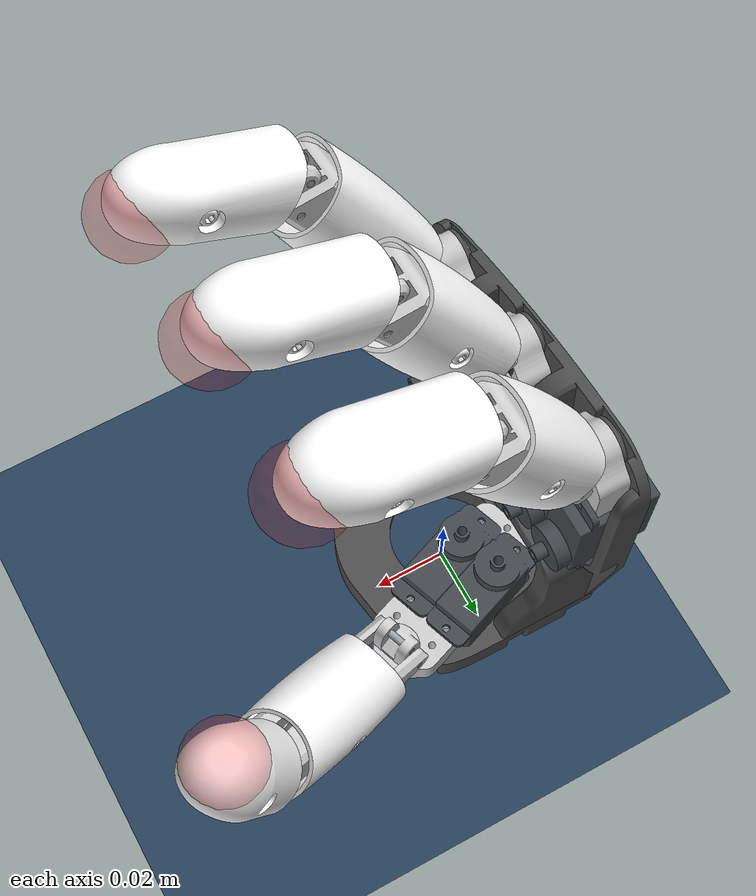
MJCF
<?xml version='1.0' encoding='utf-8'?>
<mujoco model="AH_right_serial_scene">
  <include file="serial_hand.xml" />
  <visual>
    <headlight diffuse="0.6 0.6 0.6" ambient="0.3 0.3 0.3" specular="0 0 0" />
    <rgba haze="0.15 0.25 0.35 1" />
    <global azimuth="160" elevation="-20" />
  </visual>
  <asset>
    <texture type="skybox" builtin="gradient" rgb1="0.3 0.5 0.7" rgb2="0 0 0" width="512" height="3072" />
    <texture type="2d" name="groundplane" builtin="checker" mark="edge" rgb1="0.2 0.3 0.4" rgb2="0.1 0.2 0.3" markrgb="0.8 0.8 0.8" width="300" height="300" />
    <material name="groundplane" texture="groundplane" texuniform="true" texrepeat="5 5" reflectance="0.2" />
  </asset>
  <worldbody>
    <light pos="0 0 3.5" dir="0 0 -1" directional="true" />
    <geom name="floor" size="0 0 0.05" pos="0 0 0" type="plane" material="groundplane" />
    <body name="finger1_target" pos="0.04838594 0.02402413 0.15888899" quat="0.84454864 -0.00166928  0.5354752  -0.001058" mocap="true">
      <geom type="sphere" size=".01" contype="0" conaffinity="0" rgba="1 0. 0. .2" />
    </body>
    <body name="finger2_target" pos="0.04838594 -0.01469891  0.15248302" quat="0.84347869 0.04253325 0.53479657 0.02696767" mocap="true">
      <geom type="sphere" size=".01" contype="0" conaffinity="0" rgba="1 0. 0. .2" />
    </body>
    <body name="finger3_target" pos="0.04838595 -0.05419646  0.14015328" quat="0.83889051 0.09760792 0.53188857 0.06188659" mocap="true">
      <geom type="sphere" size=".01" contype="0" conaffinity="0" rgba="1 0. 0. .2" />
    </body>
    <body name="finger4_target" pos="0.08118535 0.04433619 0.08958578" quat="0.96133341 -0.03752578  0.21530506  0.16755184" mocap="true">
      <geom type="sphere" size=".01" contype="0" conaffinity="0" rgba="1 0. 0. .2" />
    </body>
  </worldbody>
</mujoco>

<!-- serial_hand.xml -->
<mujoco model="AH_right_serial">
  <!-- Generated by ah_serial.build_mjcf from the official AmazingHand MJCF: serial simplification palm -> abd -> mcp -> pip per finger, pip coupled to mcp -->
  <compiler angle="radian" meshdir="../../../AmazingHand/Demo/AHSimulation/AHSimulation/AH_Right/mjcf/assets" autolimits="true" />
  <default>
    <default class="mjcf">
      <joint frictionloss="0.1" armature="0.005" />
      <position kp="50" dampratio="1" />
      <default class="visual">
        <geom type="mesh" contype="0" conaffinity="0" group="2" />
      </default>
      <default class="collision">
        <geom group="3" />
      </default>
    </default>
    <default class="serial_joint">
      <joint type="hinge" damping="0.02" frictionloss="0.0" armature="0.0005" />
    </default>
    <equality solref="0.002 1" solimp="0.99 0.999 0.0005 0.5 2" />
  </default>
  <asset>
    <mesh name="proximal_shell" file="proximal_shell.stl" />
    <mesh name="parallel_pin_2_x_16__da4b7ddbe9d803fe3fbc70f2e822b99b" file="parallel_pin_2_x_16__da4b7ddbe9d803fe3fbc70f2e822b99b.stl" />
    <mesh name="bushing_0608_04" file="bushing_0608_04.stl" />
    <mesh name="finger_frame_2" file="finger_frame_2.stl" />
    <mesh name="parallel_pin_2_x_10__fee063fca0c8b40e46bbc4ffff61d999" file="parallel_pin_2_x_10__fee063fca0c8b40e46bbc4ffff61d999.stl" />
    <mesh name="distal" file="distal.stl" />
    <mesh name="finger_frame_1" file="finger_frame_1.stl" />
    <mesh name="std00447_thermoplastique_m2_5x6__configuration_default" file="std00447_thermoplastique_m2_5x6__configuration_default.stl" />
    <mesh name="scs0009" file="scs0009.stl" />
    <mesh name="proximal" file="proximal.stl" />
    <mesh name="plain_washer_large_grade_a_m2_5__9a369f0dc77bf9c598cdf3fb468977e5" file="plain_washer_large_grade_a_m2_5__9a369f0dc77bf9c598cdf3fb468977e5.stl" />
    <mesh name="r_hand_plate" file="r_hand_plate.stl" />
    <mesh name="std00333_plast_tcb_torx_2_5x8__configuration_copy_of_default" file="std00333_plast_tcb_torx_2_5x8__configuration_copy_of_default.stl" />
    <mesh name="gimbal" file="gimbal.stl" />
    <mesh name="distal_shell" file="distal_shell.stl" />
    <mesh name="r_wrist_interface" file="r_wrist_interface.stl" />
    <material name="scs0009_material" rgba="0.262745 0.282353 0.301961 1" />
    <material name="finger_frame_1_material" rgba="0.8 0.8 0.8 1" />
    <material name="r_hand_plate_material" rgba="0.301961 0.301961 0.301961 1" />
    <material name="finger_frame_2_material" rgba="0.8 0.8 0.8 1" />
    <material name="bushing_0608_04_material" rgba="0.301961 0.301961 0.301961 1" />
    <material name="r_wrist_interface_material" rgba="0.301961 0.301961 0.301961 1" />
    <material name="std00333_plast_tcb_torx_2_5x8__configuration_copy_of_default_material" rgba="0.901961 0.901961 0.901961 1" />
    <material name="gimbal_material" rgba="0.8 0.8 0.8 1" />
    <material name="plain_washer_large_grade_a_m2_5__9a369f0dc77bf9c598cdf3fb468977e5_material" rgba="0.603922 0.647059 0.686275 1" />
    <material name="parallel_pin_2_x_10__fee063fca0c8b40e46bbc4ffff61d999_material" rgba="0.603922 0.647059 0.686275 1" />
    <material name="std00447_thermoplastique_m2_5x6__configuration_default_material" rgba="0.901961 0.901961 0.901961 1" />
    <material name="distal_material" rgba="0.8 0.8 0.8 1" />
    <material name="distal_shell_material" rgba="1 1 1 1" />
    <material name="parallel_pin_2_x_16__da4b7ddbe9d803fe3fbc70f2e822b99b_material" rgba="0.603922 0.647059 0.686275 1" />
    <material name="proximal_shell_material" rgba="1 1 1 1" />
    <material name="proximal_material" rgba="0.8 0.8 0.8 1" />
  </asset>
  <worldbody>
    <body name="r_wrist_interface" pos="0 0 0" quat="1 0 0 0" childclass="mjcf">
      <inertial pos="0 0 0" mass="1e-09" fullinertia="1e-09 1e-09 1e-09 0 0 0" />
      <geom type="mesh" class="visual" pos="-0.022075 0.03055 0.0698" quat="0.707107 1.17211e-16 -4.71845e-16 0.707107" mesh="scs0009" material="scs0009_material" />
      <geom type="mesh" class="visual" pos="-0.0115 0.0245 0.1022" quat="0.5 0.5 -0.5 -0.5" mesh="finger_frame_1" material="finger_frame_1_material" />
      <geom type="mesh" class="visual" pos="-0.0115 0.0245 0.1022" quat="0.5 0.5 -0.5 -0.5" mesh="r_hand_plate" material="r_hand_plate_material" />
      <geom type="mesh" class="visual" pos="-0.00443741 0.0191037 0.019125" quat="0.579228 -0.579228 0.40558 -0.40558" mesh="scs0009" material="scs0009_material" />
      <geom type="mesh" class="visual" pos="-0.0115 -0.0083 0.0961543" quat="0.473147 0.525483 -0.473147 -0.525483" mesh="finger_frame_2" material="finger_frame_2_material" />
      <geom type="mesh" class="visual" pos="-0.0115 -0.0405 0.0851417" quat="0.437766 0.555303 -0.437766 -0.555303" mesh="finger_frame_2" material="finger_frame_2_material" />
      <geom type="mesh" class="visual" pos="-0.015 -0.0083 0.0961543" quat="0.525483 -0.473147 0.525483 -0.473147" mesh="bushing_0608_04" material="bushing_0608_04_material" />
      <geom type="mesh" class="visual" pos="-0.015 0.0245 0.1022" quat="0.5 -0.5 0.5 -0.5" mesh="bushing_0608_04" material="bushing_0608_04_material" />
      <geom type="mesh" class="visual" pos="-0.015 -0.0405 0.0851417" quat="0.555303 -0.437766 0.555303 -0.437766" mesh="bushing_0608_04" material="bushing_0608_04_material" />
      <geom type="mesh" class="visual" pos="-0.025 -0.0083 0.0961543" quat="0.473147 0.525483 -0.473147 -0.525483" mesh="bushing_0608_04" material="bushing_0608_04_material" />
      <geom type="mesh" class="visual" pos="0.0280778 0.0245 0.0297" quat="3.51037e-16 0.573576 0.819152 7.48307e-16" mesh="finger_frame_2" material="finger_frame_2_material" />
      <geom type="mesh" class="visual" pos="-0.022075 -0.0109301 0.0632994" quat="0.706138 0.0370071 -0.0370071 0.706138" mesh="scs0009" material="scs0009_material" />
      <geom type="mesh" class="visual" pos="-0.022075 0.01845 0.0698" quat="0.707107 9.10276e-17 -3.92048e-16 0.707107" mesh="scs0009" material="scs0009_material" />
      <geom type="mesh" class="visual" pos="-0.0109 0.0245 0.1022" quat="0.5 0.5 -0.5 -0.5" mesh="finger_frame_2" material="finger_frame_2_material" />
      <geom type="mesh" class="visual" pos="-0.022075 0.00110358 0.0645642" quat="0.706138 0.0370071 -0.0370071 0.706138" mesh="scs0009" material="scs0009_material" />
      <geom type="mesh" class="visual" pos="-0.022075 -0.0388192 0.0522246" quat="0.702205 0.0831115 -0.0831115 0.702205" mesh="scs0009" material="scs0009_material" />
      <geom type="mesh" class="visual" pos="-0.0115 -0.0083 0.0961543" quat="0.473147 0.525483 -0.473147 -0.525483" mesh="finger_frame_1" material="finger_frame_1_material" />
      <geom type="mesh" class="visual" pos="0.0280778 0.0245 0.0262" quat="0.573576 -4.6886e-16 -6.93889e-16 0.819152" mesh="bushing_0608_04" material="bushing_0608_04_material" />
      <geom type="mesh" class="visual" pos="-0.022075 -0.0270535 0.0550493" quat="0.702205 0.0831115 -0.0831115 0.702205" mesh="scs0009" material="scs0009_material" />
      <geom type="mesh" class="visual" pos="-0.0115 0.0245 0.1022" quat="0.5 0.5 -0.5 -0.5" mesh="r_wrist_interface" material="r_wrist_interface_material" />
      <geom type="mesh" class="visual" pos="-0.000298971 0.00773341 0.019125" quat="0.579228 -0.579228 0.40558 -0.40558" mesh="scs0009" material="scs0009_material" />
      <geom type="mesh" class="visual" pos="-0.025 0.0245 0.1022" quat="0.5 0.5 -0.5 -0.5" mesh="bushing_0608_04" material="bushing_0608_04_material" />
      <geom type="mesh" class="visual" pos="-0.025 -0.0405 0.0851417" quat="0.437766 0.555303 -0.437766 -0.555303" mesh="bushing_0608_04" material="bushing_0608_04_material" />
      <geom type="mesh" class="visual" pos="0.0280778 0.0245 0.0162" quat="3.37101e-16 0.573576 0.819152 4.75257e-16" mesh="bushing_0608_04" material="bushing_0608_04_material" />
      <geom type="mesh" class="visual" pos="-0.0115 -0.0405 0.0851417" quat="0.437766 0.555303 -0.437766 -0.555303" mesh="finger_frame_1" material="finger_frame_1_material" />
      <geom type="mesh" class="visual" pos="0.0280778 0.0245 0.0297" quat="5.83086e-16 0.573576 0.819152 6.68824e-16" mesh="finger_frame_1" material="finger_frame_1_material" />
      <body name="f1_gimbal" pos="-0.00549924 0.0222505 0.102209" quat="0.615555 -0.617987 -0.3465 -0.345141">
        <joint name="f1_abd" class="serial_joint" pos="-0.00495568 -0.00810501 0.00225" axis="-0.521651 -0.853159 0" range="-0.692653 0.682224" />
        <inertial pos="-0.00530874 -0.00868244 0.00225" mass="0.00201325" fullinertia="9.34482e-08 4.69015e-08 1.16807e-07 -4.54529e-08 -5.37151e-21 1.88891e-21" />
        <geom type="mesh" class="visual" pos="-0.0113198 -0.0185136 0.00225" quat="0.616776 -0.345814 0.616776 0.345814" mesh="std00333_plast_tcb_torx_2_5x8__configuration_copy_of_default" material="std00333_plast_tcb_torx_2_5x8__configuration_copy_of_default_material" />
        <geom type="mesh" class="visual" pos="-0.0031299 -0.00511895 0.00225" quat="0.345814 0.616776 0.345814 -0.616776" mesh="gimbal" material="gimbal_material" />
        <geom type="mesh" class="visual" pos="-0.0103287 -0.0168926 0.00225" quat="0.345814 0.616776 0.345814 -0.616776" mesh="plain_washer_large_grade_a_m2_5__9a369f0dc77bf9c598cdf3fb468977e5" material="plain_washer_large_grade_a_m2_5__9a369f0dc77bf9c598cdf3fb468977e5_material" />
        <geom type="mesh" class="visual" pos="8.32667e-17 -4.85723e-17 0.00225" quat="0.872253 2.80913e-14 1.12133e-14 0.489055" mesh="parallel_pin_2_x_10__fee063fca0c8b40e46bbc4ffff61d999" material="parallel_pin_2_x_10__fee063fca0c8b40e46bbc4ffff61d999_material" />
        <body name="f1_proximal" pos="0.0488697 -0.00532345 -0.00274996" quat="0.999998 1.93059e-14 2.35411e-14 -0.00196581">
          <joint name="f1_mcp" class="serial_joint" pos="-0.052 1.38778e-17 0" axis="0 1.38778e-16 1" range="-1.09281 0.789243" />
          <inertial pos="-0.0249171 -0.00392936 0.0052354" mass="0.0101851" fullinertia="4.96149e-07 2.52849e-06 2.3577e-06 2.45138e-08 1.19032e-10 3.03943e-10" />
          <geom type="mesh" class="visual" pos="-0.022 -0.004 -0.00655" quat="0.707107 6.63882e-17 -1.66533e-16 -0.707107" mesh="std00447_thermoplastique_m2_5x6__configuration_default" material="std00447_thermoplastique_m2_5x6__configuration_default_material" />
          <geom type="mesh" class="visual" pos="-0.022 -0.004 0.01685" quat="2.62977e-17 -0.707107 0.707107 -1.94944e-16" mesh="std00447_thermoplastique_m2_5x6__configuration_default" material="std00447_thermoplastique_m2_5x6__configuration_default_material" />
          <geom type="mesh" class="visual" pos="-0.052 0 0.00515" quat="0.707107 -5.62433e-17 5.55112e-17 -0.707107" mesh="parallel_pin_2_x_16__da4b7ddbe9d803fe3fbc70f2e822b99b" material="parallel_pin_2_x_16__da4b7ddbe9d803fe3fbc70f2e822b99b_material" />
          <geom type="mesh" class="visual" pos="-5.55112e-17 -4.16334e-17 0.00515" quat="0.707107 -1.11937e-17 -1.66533e-16 -0.707107" mesh="parallel_pin_2_x_16__da4b7ddbe9d803fe3fbc70f2e822b99b" material="parallel_pin_2_x_16__da4b7ddbe9d803fe3fbc70f2e822b99b_material" />
          <geom type="mesh" class="visual" pos="-0.052 -1.38778e-17 0.00515" quat="0.5 0.5 0.5 -0.5" mesh="proximal_shell" material="proximal_shell_material" />
          <geom type="mesh" class="visual" pos="-0.052 1.38778e-17 0.00525" quat="0.5 0.5 0.5 -0.5" mesh="proximal" material="proximal_material" />
          <body name="f1_distal" pos="0.00037029 -0.00598856 0.00655" quat="1.9203e-14 0.999998 0.00199723 2.35655e-14">
            <joint name="f1_pip" class="serial_joint" pos="-0.000346366 -0.00598999 0.00655" axis="4.69867e-14 3.85581e-14 -1" range="-1.16284 0.708367" />
            <inertial pos="0.014571 -0.0133924 0.00225" mass="0.00540375" fullinertia="3.60212e-07 5.51031e-07 7.69492e-07 3.36413e-07 4.59414e-20 6.20919e-20" />
            <geom type="mesh" class="visual" pos="0.0194851 -0.0165558 -0.00735" quat="0.870159 6.45235e-15 -4.26603e-14 0.49277" mesh="std00447_thermoplastique_m2_5x6__configuration_default" material="std00447_thermoplastique_m2_5x6__configuration_default_material" />
            <geom type="mesh" class="visual" pos="0.0194851 -0.0165558 0.01185" quat="5.40609e-15 -0.870159 -0.49277 -2.95972e-14" mesh="std00447_thermoplastique_m2_5x6__configuration_default" material="std00447_thermoplastique_m2_5x6__configuration_default_material" />
            <geom type="mesh" class="visual" pos="-0.0449404 0.0207565 0.00225" quat="0.348441 -0.615296 -0.348441 -0.615296" mesh="distal" material="distal_material" />
            <geom type="mesh" class="visual" pos="-0.0449404 0.0207565 0.00225" quat="0.348441 -0.615296 -0.348441 -0.615296" mesh="distal_shell" material="distal_shell_material" />
            <geom type="mesh" class="visual" pos="5.55112e-17 6.93889e-17 0.00225" quat="3.44594e-14 -0.49277 0.870159 4.55847e-15" mesh="parallel_pin_2_x_10__fee063fca0c8b40e46bbc4ffff61d999" material="parallel_pin_2_x_10__fee063fca0c8b40e46bbc4ffff61d999_material" />
            <site name="tip1" group="3" pos="0.0272563 -0.0277177 0.00225" quat="0.335723 -0.335723 0.622326 -0.622326" />
          </body>
        </body>
      </body>
      <body name="f2_gimbal" pos="-0.00550011 -0.0105371 0.0959289" quat="0.647038 -0.584949 -0.327969 -0.362784">
        <joint name="f2_abd" class="serial_joint" pos="-0.00495568 -0.00810501 0.00225" axis="-0.521651 -0.853159 0" range="-0.690372 0.680595" />
        <inertial pos="-0.00530874 -0.00868244 0.00225" mass="0.00201325" fullinertia="9.34482e-08 4.69015e-08 1.16807e-07 -4.54529e-08 4.13712e-22 -1.1292e-21" />
        <geom type="mesh" class="visual" pos="1.52656e-16 -9.71445e-17 0.00225" quat="0.872253 -3.49423e-15 -4.21885e-15 0.489055" mesh="parallel_pin_2_x_10__fee063fca0c8b40e46bbc4ffff61d999" material="parallel_pin_2_x_10__fee063fca0c8b40e46bbc4ffff61d999_material" />
        <geom type="mesh" class="visual" pos="-0.0113198 -0.0185136 0.00225" quat="0.616776 -0.345814 0.616776 0.345814" mesh="std00333_plast_tcb_torx_2_5x8__configuration_copy_of_default" material="std00333_plast_tcb_torx_2_5x8__configuration_copy_of_default_material" />
        <geom type="mesh" class="visual" pos="-0.0103287 -0.0168926 0.00225" quat="0.345814 0.616776 0.345814 -0.616776" mesh="plain_washer_large_grade_a_m2_5__9a369f0dc77bf9c598cdf3fb468977e5" material="plain_washer_large_grade_a_m2_5__9a369f0dc77bf9c598cdf3fb468977e5_material" />
        <geom type="mesh" class="visual" pos="-0.0031299 -0.00511895 0.00225" quat="0.345814 0.616776 0.345814 -0.616776" mesh="gimbal" material="gimbal_material" />
        <body name="f2_proximal" pos="0.0488697 -0.00532339 -0.00275" quat="0.999998 -1.16013e-15 -5.38147e-15 -0.00196532">
          <joint name="f2_mcp" class="serial_joint" pos="-0.052 2.08167e-17 -2.60209e-18" axis="0 6.9389e-17 1" range="-1.09282 0.789245" />
          <inertial pos="-0.0249171 -0.00392936 0.0052354" mass="0.0101851" fullinertia="4.96149e-07 2.52849e-06 2.3577e-06 2.45138e-08 1.19032e-10 3.03943e-10" />
          <geom type="mesh" class="visual" pos="0 1.38778e-17 0.00515" quat="0.707107 -3.56612e-17 1.11022e-16 -0.707107" mesh="parallel_pin_2_x_16__da4b7ddbe9d803fe3fbc70f2e822b99b" material="parallel_pin_2_x_16__da4b7ddbe9d803fe3fbc70f2e822b99b_material" />
          <geom type="mesh" class="visual" pos="-0.022 -0.004 0.01685" quat="6.10867e-17 0.707107 -0.707107 -1.01873e-16" mesh="std00447_thermoplastique_m2_5x6__configuration_default" material="std00447_thermoplastique_m2_5x6__configuration_default_material" />
          <geom type="mesh" class="visual" pos="-0.022 -0.004 -0.00655" quat="0.707107 -2.46327e-16 4.44089e-16 -0.707107" mesh="std00447_thermoplastique_m2_5x6__configuration_default" material="std00447_thermoplastique_m2_5x6__configuration_default_material" />
          <geom type="mesh" class="visual" pos="-0.052 2.08167e-17 0.00525" quat="0.5 0.5 0.5 -0.5" mesh="proximal" material="proximal_material" />
          <geom type="mesh" class="visual" pos="-0.052 2.77556e-17 0.00515" quat="0.5 0.5 0.5 -0.5" mesh="proximal_shell" material="proximal_shell_material" />
          <geom type="mesh" class="visual" pos="-0.052 2.77556e-17 0.00515" quat="0.707107 1.76229e-16 -0 -0.707107" mesh="parallel_pin_2_x_16__da4b7ddbe9d803fe3fbc70f2e822b99b" material="parallel_pin_2_x_16__da4b7ddbe9d803fe3fbc70f2e822b99b_material" />
          <body name="f2_distal" pos="0.000370296 -0.00598856 0.00655" quat="1.05676e-15 -0.999998 -0.0019977 5.33497e-15">
            <joint name="f2_pip" class="serial_joint" pos="-0.000346366 -0.00598999 0.00655" axis="-1.08108e-14 -2.17187e-15 -1" range="-1.16285 0.708366" />
            <inertial pos="0.014571 -0.0133924 0.00225" mass="0.00540375" fullinertia="3.60212e-07 5.51031e-07 7.69492e-07 3.36413e-07 -3.94368e-22 -1.61985e-22" />
            <geom type="mesh" class="visual" pos="-0.0449404 0.0207565 0.00225" quat="0.348441 -0.615296 -0.348441 -0.615296" mesh="distal" material="distal_material" />
            <geom type="mesh" class="visual" pos="0.0194851 -0.0165558 0.01185" quat="2.30282e-15 -0.870159 -0.49277 5.04081e-15" mesh="std00447_thermoplastique_m2_5x6__configuration_default" material="std00447_thermoplastique_m2_5x6__configuration_default_material" />
            <geom type="mesh" class="visual" pos="-0.0449404 0.0207565 0.00225" quat="0.348441 -0.615296 -0.348441 -0.615296" mesh="distal_shell" material="distal_shell_material" />
            <geom type="mesh" class="visual" pos="0.0194851 -0.0165558 -0.00735" quat="0.870159 2.64119e-15 5.27356e-15 0.49277" mesh="std00447_thermoplastique_m2_5x6__configuration_default" material="std00447_thermoplastique_m2_5x6__configuration_default_material" />
            <geom type="mesh" class="visual" pos="2.77556e-17 1.38778e-17 0.00225" quat="2.56875e-17 0.49277 -0.870159 -3.08699e-17" mesh="parallel_pin_2_x_10__fee063fca0c8b40e46bbc4ffff61d999" material="parallel_pin_2_x_10__fee063fca0c8b40e46bbc4ffff61d999_material" />
            <site name="tip2" group="3" pos="0.0272563 -0.0277177 0.00225" quat="0.335723 -0.335723 0.622326 -0.622326" />
          </body>
        </body>
      </body>
      <body name="f3_gimbal" pos="-0.0054997 -0.0426897 0.0846249" quat="0.683924 -0.541353 -0.303531 -0.383476">
        <joint name="f3_abd" class="serial_joint" pos="-0.00495568 -0.00810501 0.00225" axis="-0.521651 -0.853159 0" range="-0.692653 0.682225" />
        <inertial pos="-0.00530874 -0.00868244 0.00225" mass="0.00201325" fullinertia="9.34482e-08 4.69015e-08 1.16807e-07 -4.54529e-08 -9.47916e-23 -9.91331e-23" />
        <geom type="mesh" class="visual" pos="-0.0031299 -0.00511895 0.00225" quat="0.345814 0.616776 0.345814 -0.616776" mesh="gimbal" material="gimbal_material" />
        <geom type="mesh" class="visual" pos="-0.0113198 -0.0185136 0.00225" quat="0.616776 -0.345814 0.616776 0.345814" mesh="std00333_plast_tcb_torx_2_5x8__configuration_copy_of_default" material="std00333_plast_tcb_torx_2_5x8__configuration_copy_of_default_material" />
        <geom type="mesh" class="visual" pos="-0.0103287 -0.0168926 0.00225" quat="0.345814 0.616776 0.345814 -0.616776" mesh="plain_washer_large_grade_a_m2_5__9a369f0dc77bf9c598cdf3fb468977e5" material="plain_washer_large_grade_a_m2_5__9a369f0dc77bf9c598cdf3fb468977e5_material" />
        <geom type="mesh" class="visual" pos="-4.02456e-16 2.98372e-16 0.00225" quat="0.872253 1.28716e-15 1.77636e-15 0.489055" mesh="parallel_pin_2_x_10__fee063fca0c8b40e46bbc4ffff61d999" material="parallel_pin_2_x_10__fee063fca0c8b40e46bbc4ffff61d999_material" />
        <body name="f3_proximal" pos="0.0488697 -0.00532398 -0.00275001" quat="0.999998 2.64371e-17 6.16269e-17 -0.0019703">
          <joint name="f3_mcp" class="serial_joint" pos="-0.052 6.93889e-18 -1.73472e-17" axis="0 0 1" range="-1.09282 0.789249" />
          <inertial pos="-0.0249171 -0.00392936 0.0052354" mass="0.0101851" fullinertia="4.96149e-07 2.52849e-06 2.3577e-06 2.45138e-08 1.19032e-10 3.03943e-10" />
          <geom type="mesh" class="visual" pos="-0.052 1.38778e-17 0.00515" quat="0.5 0.5 0.5 -0.5" mesh="proximal_shell" material="proximal_shell_material" />
          <geom type="mesh" class="visual" pos="-0.022 -0.004 -0.00655" quat="0.707107 1.743e-16 1.09635e-15 -0.707107" mesh="std00447_thermoplastique_m2_5x6__configuration_default" material="std00447_thermoplastique_m2_5x6__configuration_default_material" />
          <geom type="mesh" class="visual" pos="-0.052 1.38778e-17 0.00525" quat="0.5 0.5 0.5 -0.5" mesh="proximal" material="proximal_material" />
          <geom type="mesh" class="visual" pos="-0.052 6.93889e-18 0.00515" quat="0.707107 1.94591e-16 9.99201e-16 -0.707107" mesh="parallel_pin_2_x_16__da4b7ddbe9d803fe3fbc70f2e822b99b" material="parallel_pin_2_x_16__da4b7ddbe9d803fe3fbc70f2e822b99b_material" />
          <geom type="mesh" class="visual" pos="-0.022 -0.004 0.01685" quat="6.5388e-16 -0.707107 0.707107 -5.09493e-16" mesh="std00447_thermoplastique_m2_5x6__configuration_default" material="std00447_thermoplastique_m2_5x6__configuration_default_material" />
          <geom type="mesh" class="visual" pos="0 -6.93889e-18 0.00515" quat="0.707107 -1.10646e-15 3.44169e-15 -0.707107" mesh="parallel_pin_2_x_16__da4b7ddbe9d803fe3fbc70f2e822b99b" material="parallel_pin_2_x_16__da4b7ddbe9d803fe3fbc70f2e822b99b_material" />
          <body name="f3_distal" pos="0.000370236 -0.00598856 0.00655" quat="5.21401e-17 0.999998 0.00199269 7.47937e-18">
            <joint name="f3_pip" class="serial_joint" pos="-0.000346366 -0.00598999 0.00655" axis="1.11022e-16 1.11022e-16 -1" range="-1.16285 0.708375" />
            <inertial pos="0.014571 -0.0133924 0.00225" mass="0.00540375" fullinertia="3.60212e-07 5.51031e-07 7.69492e-07 3.36413e-07 5.01568e-22 3.08634e-22" />
            <geom type="mesh" class="visual" pos="0.0194851 -0.0165558 -0.00735" quat="0.870159 -7.41727e-16 -1.27676e-15 0.49277" mesh="std00447_thermoplastique_m2_5x6__configuration_default" material="std00447_thermoplastique_m2_5x6__configuration_default_material" />
            <geom type="mesh" class="visual" pos="0.0194851 -0.0165558 0.01185" quat="2.50462e-16 -0.870159 -0.49277 -1.265e-16" mesh="std00447_thermoplastique_m2_5x6__configuration_default" material="std00447_thermoplastique_m2_5x6__configuration_default_material" />
            <geom type="mesh" class="visual" pos="2.77556e-17 1.38778e-17 0.00225" quat="1.21675e-16 -0.49277 0.870159 2.46257e-16" mesh="parallel_pin_2_x_10__fee063fca0c8b40e46bbc4ffff61d999" material="parallel_pin_2_x_10__fee063fca0c8b40e46bbc4ffff61d999_material" />
            <geom type="mesh" class="visual" pos="-0.0449404 0.0207565 0.00225" quat="0.348441 -0.615296 -0.348441 -0.615296" mesh="distal" material="distal_material" />
            <geom type="mesh" class="visual" pos="-0.0449404 0.0207565 0.00225" quat="0.348441 -0.615296 -0.348441 -0.615296" mesh="distal_shell" material="distal_shell_material" />
            <site name="tip3" group="3" pos="0.0272563 -0.0277177 0.00225" quat="0.335723 -0.335723 0.622326 -0.622326" />
          </body>
        </body>
      </body>
      <body name="f4_gimbal" pos="0.027317 0.0266176 0.0357002" quat="0.637629 0.703445 -0.0719113 0.305651">
        <joint name="f4_abd" class="serial_joint" pos="-0.00495566 -0.00810503 0.00225" axis="-0.521648 -0.853161 0" range="-0.692653 0.682222" />
        <inertial pos="-0.00530871 -0.00868246 0.00225" mass="0.00201325" fullinertia="9.34485e-08 4.69012e-08 1.16807e-07 -4.54527e-08 2.07493e-23 -3.80521e-22" />
        <geom type="mesh" class="visual" pos="-6.93889e-18 5.20417e-18 0.00225" quat="0.872252 -2.35114e-14 -1.31006e-14 0.489056" mesh="parallel_pin_2_x_10__fee063fca0c8b40e46bbc4ffff61d999" material="parallel_pin_2_x_10__fee063fca0c8b40e46bbc4ffff61d999_material" />
        <geom type="mesh" class="visual" pos="-0.0103286 -0.0168926 0.00225" quat="0.345815 0.616776 0.345815 -0.616776" mesh="plain_washer_large_grade_a_m2_5__9a369f0dc77bf9c598cdf3fb468977e5" material="plain_washer_large_grade_a_m2_5__9a369f0dc77bf9c598cdf3fb468977e5_material" />
        <geom type="mesh" class="visual" pos="-0.00312989 -0.00511896 0.00225" quat="0.345815 0.616776 0.345815 -0.616776" mesh="gimbal" material="gimbal_material" />
        <geom type="mesh" class="visual" pos="-0.0113198 -0.0185136 0.00225" quat="0.616776 -0.345815 0.616776 0.345815" mesh="std00333_plast_tcb_torx_2_5x8__configuration_copy_of_default" material="std00333_plast_tcb_torx_2_5x8__configuration_copy_of_default_material" />
        <body name="f4_proximal" pos="0.0488697 -0.00532718 -0.00275002" quat="0.999998 -1.3096e-14 -2.18624e-14 -0.00200186">
          <joint name="f4_mcp" class="serial_joint" pos="-0.052 6.93889e-18 0" axis="0 8.6737e-18 1" range="-1.09276 0.789313" />
          <inertial pos="-0.0249171 -0.00392936 0.0052354" mass="0.0101851" fullinertia="4.96149e-07 2.52849e-06 2.3577e-06 2.45138e-08 1.19032e-10 3.03943e-10" />
          <geom type="mesh" class="visual" pos="-0.022 -0.004 0.01685" quat="4.73912e-15 0.707107 -0.707107 -4.64756e-16" mesh="std00447_thermoplastique_m2_5x6__configuration_default" material="std00447_thermoplastique_m2_5x6__configuration_default_material" />
          <geom type="mesh" class="visual" pos="-0.052 4.33681e-18 0.00515" quat="0.707107 -1.03781e-17 -2.77556e-17 -0.707107" mesh="parallel_pin_2_x_16__da4b7ddbe9d803fe3fbc70f2e822b99b" material="parallel_pin_2_x_16__da4b7ddbe9d803fe3fbc70f2e822b99b_material" />
          <geom type="mesh" class="visual" pos="0 -2.68882e-17 0.00515" quat="0.707107 1.23046e-15 -7.77156e-16 -0.707107" mesh="parallel_pin_2_x_16__da4b7ddbe9d803fe3fbc70f2e822b99b" material="parallel_pin_2_x_16__da4b7ddbe9d803fe3fbc70f2e822b99b_material" />
          <geom type="mesh" class="visual" pos="-0.052 3.1225e-17 0.00515" quat="0.5 0.5 0.5 -0.5" mesh="proximal_shell" material="proximal_shell_material" />
          <geom type="mesh" class="visual" pos="-0.052 8.67362e-18 0.00525" quat="0.5 0.5 0.5 -0.5" mesh="proximal" material="proximal_material" />
          <geom type="mesh" class="visual" pos="-0.022 -0.004 -0.00655" quat="0.707107 -3.79993e-15 5.55112e-16 -0.707107" mesh="std00447_thermoplastique_m2_5x6__configuration_default" material="std00447_thermoplastique_m2_5x6__configuration_default_material" />
          <body name="f4_distal" pos="0.000369824 -0.0059886 0.00655" quat="1.3199e-14 -0.999998 -0.00195963 2.17896e-14">
            <joint name="f4_pip" class="serial_joint" pos="-0.00034635 -0.00599 0.00655" axis="-4.36381e-14 -2.6254e-14 -1" range="-1.16279 0.708435" />
            <inertial pos="0.0145711 -0.0133923 0.00225" mass="0.00540375" fullinertia="3.6021e-07 5.51033e-07 7.69492e-07 3.36412e-07 9.8633e-21 -8.79128e-21" />
            <geom type="mesh" class="visual" pos="-0.0449404 0.0207563 0.00225" quat="0.348442 -0.615295 -0.348442 -0.615295" mesh="distal_shell" material="distal_shell_material" />
            <geom type="mesh" class="visual" pos="0.0194851 -0.0165557 0.01185" quat="1.02396e-15 0.870159 0.492771 -2.69161e-14" mesh="std00447_thermoplastique_m2_5x6__configuration_default" material="std00447_thermoplastique_m2_5x6__configuration_default_material" />
            <geom type="mesh" class="visual" pos="9.71445e-17 6.28837e-17 0.00225" quat="2.69867e-14 0.492771 -0.870159 9.54903e-16" mesh="parallel_pin_2_x_10__fee063fca0c8b40e46bbc4ffff61d999" material="parallel_pin_2_x_10__fee063fca0c8b40e46bbc4ffff61d999_material" />
            <geom type="mesh" class="visual" pos="-0.0449404 0.0207563 0.00225" quat="0.348442 -0.615295 -0.348442 -0.615295" mesh="distal" material="distal_material" />
            <geom type="mesh" class="visual" pos="0.0194851 -0.0165557 -0.00735" quat="0.870159 -8.44457e-16 2.55351e-14 0.492771" mesh="std00447_thermoplastique_m2_5x6__configuration_default" material="std00447_thermoplastique_m2_5x6__configuration_default_material" />
            <site name="tip4" group="3" pos="0.0272563 -0.0277177 0.00225" quat="0.622326 0.622326 0.335724 0.335724" />
          </body>
        </body>
      </body>
    </body>
  </worldbody>
  <equality>
    <joint name="f1_pip_coupling" joint1="f1_pip" joint2="f1_mcp" polycoef="3.3653937e-05 0.99006615 -0.044792106 -0.1037965 -0.091216271" />
    <joint name="f2_pip_coupling" joint1="f2_pip" joint2="f2_mcp" polycoef="3.2227289e-05 0.99008691 -0.044784174 -0.10384059 -0.091244941" />
    <joint name="f3_pip_coupling" joint1="f3_pip" joint2="f3_mcp" polycoef="3.4133577e-05 0.99006701 -0.044789057 -0.10379316 -0.091216411" />
    <joint name="f4_pip_coupling" joint1="f4_pip" joint2="f4_mcp" polycoef="3.331499e-05 0.99007089 -0.044770879 -0.10376917 -0.091216352" />
  </equality>
  <actuator>
    <position name="f1_abd" joint="f1_abd" class="mjcf" ctrlrange="-0.675199 0.664771" />
    <position name="f1_mcp" joint="f1_mcp" class="mjcf" ctrlrange="-1.07536 0.77179" />
    <position name="f2_abd" joint="f2_abd" class="mjcf" ctrlrange="-0.672918 0.663142" />
    <position name="f2_mcp" joint="f2_mcp" class="mjcf" ctrlrange="-1.07537 0.771791" />
    <position name="f3_abd" joint="f3_abd" class="mjcf" ctrlrange="-0.6752 0.664771" />
    <position name="f3_mcp" joint="f3_mcp" class="mjcf" ctrlrange="-1.07537 0.771795" />
    <position name="f4_abd" joint="f4_abd" class="mjcf" ctrlrange="-0.6752 0.664768" />
    <position name="f4_mcp" joint="f4_mcp" class="mjcf" ctrlrange="-1.07531 0.771859" />
  </actuator>
  <keyframe>
    <key name="zero" qpos="0 0 0 0 0 0 0 0 0 0 0 0" />
  </keyframe>
</mujoco>
